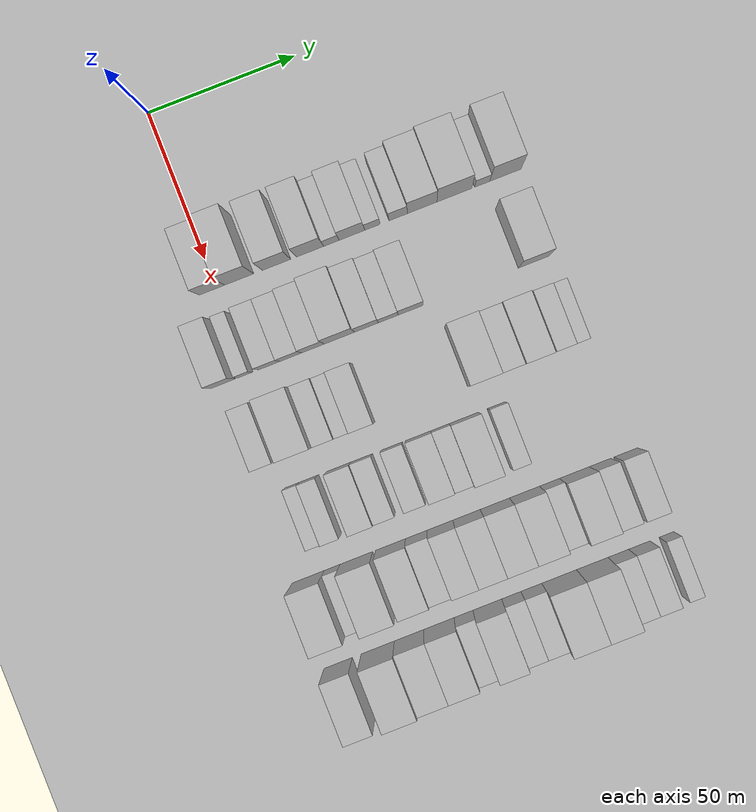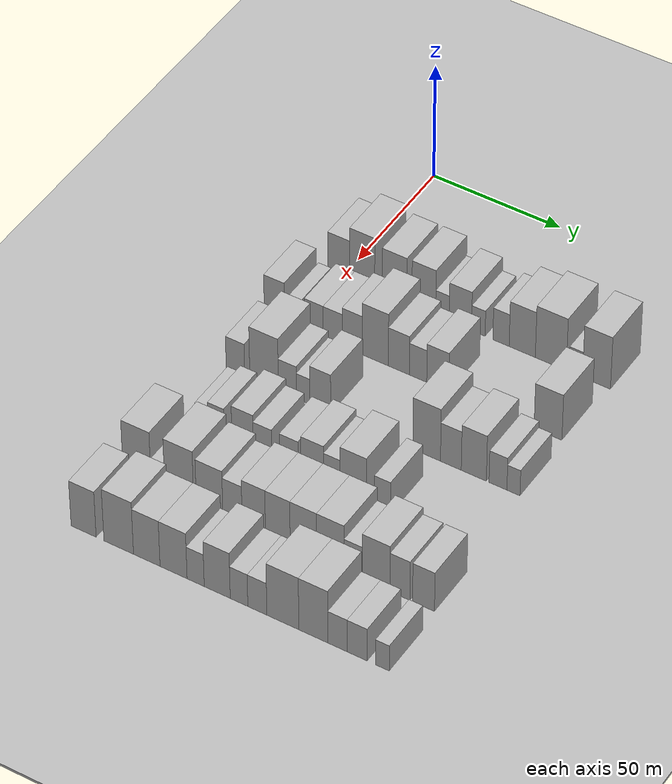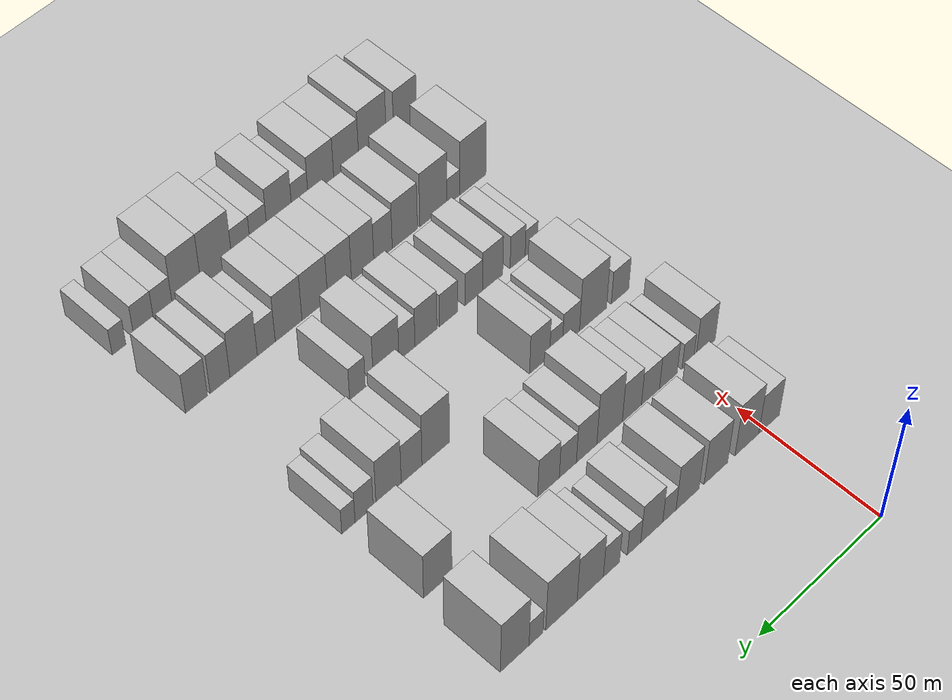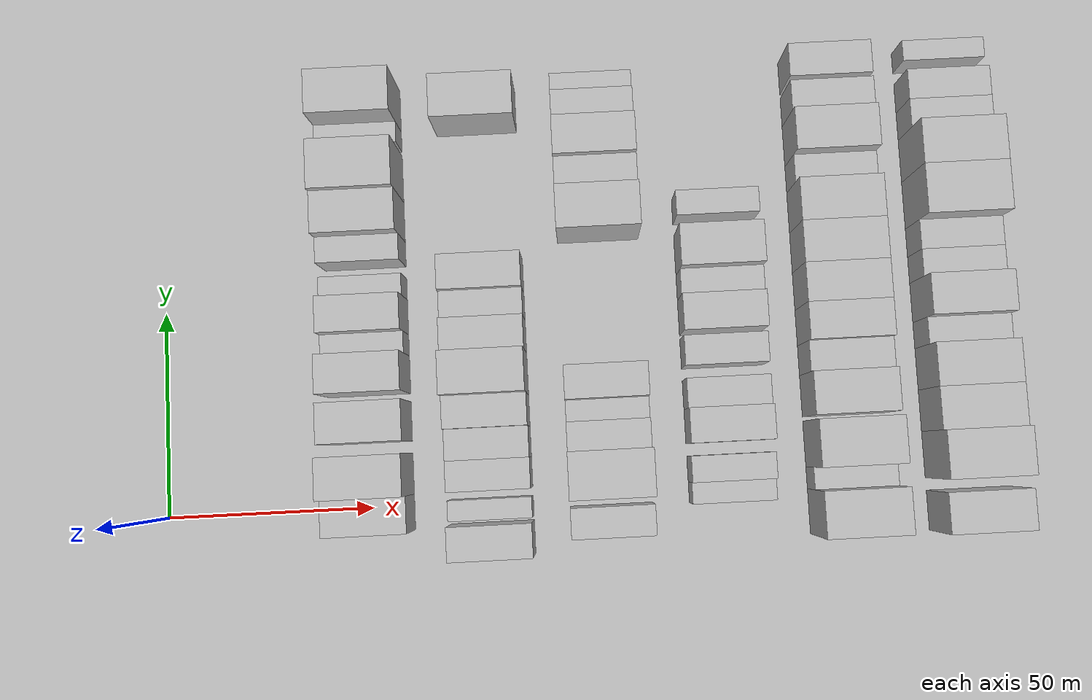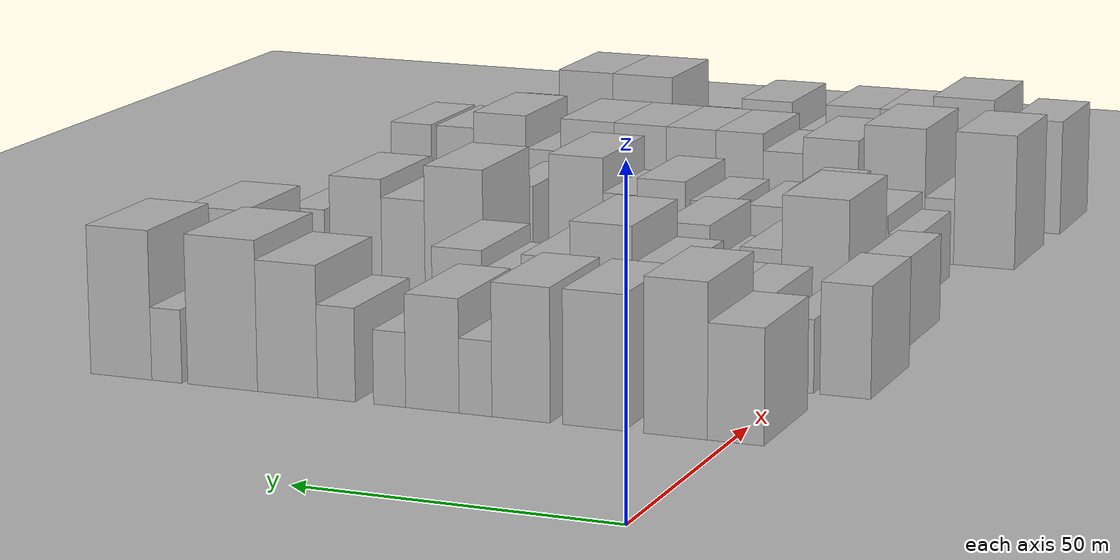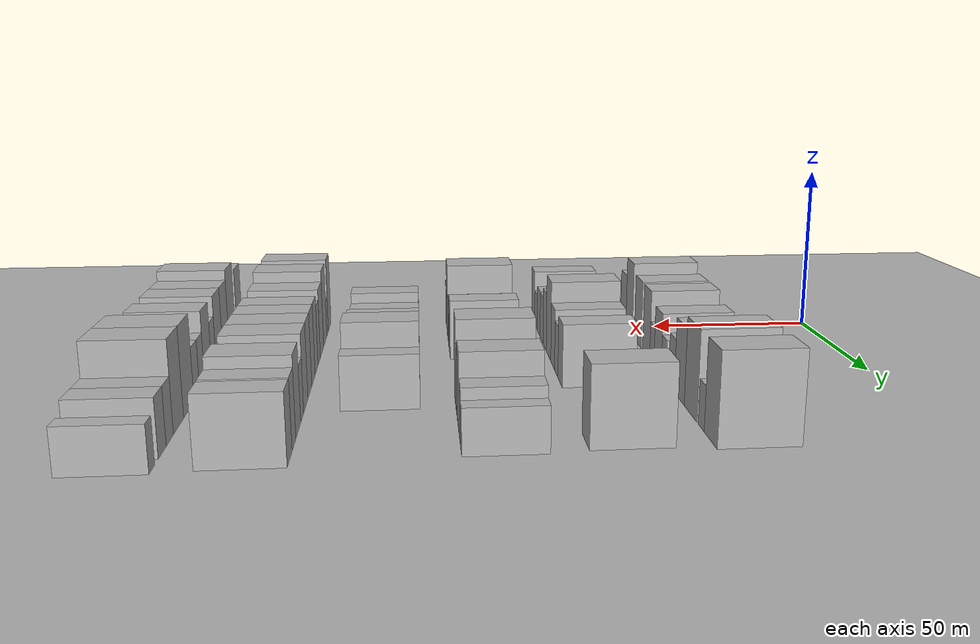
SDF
<sdf version="1.6">
 <world name="default">
  <include><name>ground_plane_1</name><uri>model://HANNAS_ground_plane</uri></include>
  <include>
   <name>ground_plane_2</name>
   <uri>model://HANNAS_ground_plane</uri>
   <pose>100 0 0  0 0 0</pose>
  </include>
  <model name="building_58">
   <static>1</static>
   <pose>50.0000 -1.4658 0 0.000000 0.000000 0.000000</pose>
   <link name="link">
    <pose>0 0 9.00 0 0 0</pose>
    <collision name="collision"><geometry><box><size>20.0000 8.6507 18.0000</size></box></geometry></collision>
    <visual name="visual">
     <cast_shadows>0</cast_shadows>
     <geometry><box><size>20.0000 8.6507 18.0000</size></box></geometry>
     <material>
      <script>
       <uri>model://HANNAS_wall/materials/scripts</uri>
       <uri>model://HANNAS_wall/materials/textures</uri>
       <name>vrc/HANNAS_wall</name>
      </script>
     </material>
    </visual>
   </link>
  </model>
  <model name="building_59">
   <static>1</static>
   <pose>50.0000 7.7913 0 0.000000 0.000000 0.000000</pose>
   <link name="link">
    <pose>0 0 12.00 0 0 0</pose>
    <collision name="collision"><geometry><box><size>20.0000 9.8635 24.0000</size></box></geometry></collision>
    <visual name="visual">
     <cast_shadows>0</cast_shadows>
     <geometry><box><size>20.0000 9.8635 24.0000</size></box></geometry>
     <material>
      <script>
       <uri>model://HANNAS_wall/materials/scripts</uri>
       <uri>model://HANNAS_wall/materials/textures</uri>
       <name>vrc/HANNAS_wall</name>
      </script>
     </material>
    </visual>
   </link>
  </model>
  <model name="building_60">
   <static>1</static>
   <pose>50.0000 20.5481 0 0.000000 0.000000 0.000000</pose>
   <link name="link">
    <pose>0 0 10.50 0 0 0</pose>
    <collision name="collision"><geometry><box><size>20.0000 9.6502 21.0000</size></box></geometry></collision>
    <visual name="visual">
     <cast_shadows>0</cast_shadows>
     <geometry><box><size>20.0000 9.6502 21.0000</size></box></geometry>
     <material>
      <script>
       <uri>model://HANNAS_wall/materials/scripts</uri>
       <uri>model://HANNAS_wall/materials/textures</uri>
       <name>vrc/HANNAS_wall</name>
      </script>
     </material>
    </visual>
   </link>
  </model>
  <model name="building_61">
   <static>1</static>
   <pose>50.0000 32.0184 0 0.000000 0.000000 0.000000</pose>
   <link name="link">
    <pose>0 0 10.50 0 0 0</pose>
    <collision name="collision"><geometry><box><size>20.0000 9.2904 21.0000</size></box></geometry></collision>
    <visual name="visual">
     <cast_shadows>0</cast_shadows>
     <geometry><box><size>20.0000 9.2904 21.0000</size></box></geometry>
     <material>
      <script>
       <uri>model://HANNAS_wall/materials/scripts</uri>
       <uri>model://HANNAS_wall/materials/textures</uri>
       <name>vrc/HANNAS_wall</name>
      </script>
     </material>
    </visual>
   </link>
  </model>
  <model name="building_62">
   <static>1</static>
   <pose>50.0000 39.3033 0 0.000000 0.000000 0.000000</pose>
   <link name="link">
    <pose>0 0 6.00 0 0 0</pose>
    <collision name="collision"><geometry><box><size>20.0000 5.2794 12.0000</size></box></geometry></collision>
    <visual name="visual">
     <cast_shadows>0</cast_shadows>
     <geometry><box><size>20.0000 5.2794 12.0000</size></box></geometry>
     <material>
      <script>
       <uri>model://HANNAS_wall/materials/scripts</uri>
       <uri>model://HANNAS_wall/materials/textures</uri>
       <name>vrc/HANNAS_wall</name>
      </script>
     </material>
    </visual>
   </link>
  </model>
  <model name="building_63">
   <static>1</static>
   <pose>50.0000 46.2925 0 0.000000 0.000000 0.000000</pose>
   <link name="link">
    <pose>0 0 9.00 0 0 0</pose>
    <collision name="collision"><geometry><box><size>20.0000 8.6988 18.0000</size></box></geometry></collision>
    <visual name="visual">
     <cast_shadows>0</cast_shadows>
     <geometry><box><size>20.0000 8.6988 18.0000</size></box></geometry>
     <material>
      <script>
       <uri>model://HANNAS_wall/materials/scripts</uri>
       <uri>model://HANNAS_wall/materials/textures</uri>
       <name>vrc/HANNAS_wall</name>
      </script>
     </material>
    </visual>
   </link>
  </model>
  <model name="building_64">
   <static>1</static>
   <pose>50.0000 53.2719 0 0.000000 0.000000 0.000000</pose>
   <link name="link">
    <pose>0 0 6.00 0 0 0</pose>
    <collision name="collision"><geometry><box><size>20.0000 5.2601 12.0000</size></box></geometry></collision>
    <visual name="visual">
     <cast_shadows>0</cast_shadows>
     <geometry><box><size>20.0000 5.2601 12.0000</size></box></geometry>
     <material>
      <script>
       <uri>model://HANNAS_wall/materials/scripts</uri>
       <uri>model://HANNAS_wall/materials/textures</uri>
       <name>vrc/HANNAS_wall</name>
      </script>
     </material>
    </visual>
   </link>
  </model>
  <model name="building_65">
   <static>1</static>
   <pose>50.0000 62.0381 0 0.000000 0.000000 0.000000</pose>
   <link name="link">
    <pose>0 0 7.50 0 0 0</pose>
    <collision name="collision"><geometry><box><size>20.0000 6.2723 15.0000</size></box></geometry></collision>
    <visual name="visual">
     <cast_shadows>0</cast_shadows>
     <geometry><box><size>20.0000 6.2723 15.0000</size></box></geometry>
     <material>
      <script>
       <uri>model://HANNAS_wall/materials/scripts</uri>
       <uri>model://HANNAS_wall/materials/textures</uri>
       <name>vrc/HANNAS_wall</name>
      </script>
     </material>
    </visual>
   </link>
  </model>
  <model name="building_66">
   <static>1</static>
   <pose>50.0000 70.2058 0 0.000000 0.000000 0.000000</pose>
   <link name="link">
    <pose>0 0 10.50 0 0 0</pose>
    <collision name="collision"><geometry><box><size>20.0000 10.0632 21.0000</size></box></geometry></collision>
    <visual name="visual">
     <cast_shadows>0</cast_shadows>
     <geometry><box><size>20.0000 10.0632 21.0000</size></box></geometry>
     <material>
      <script>
       <uri>model://HANNAS_wall/materials/scripts</uri>
       <uri>model://HANNAS_wall/materials/textures</uri>
       <name>vrc/HANNAS_wall</name>
      </script>
     </material>
    </visual>
   </link>
  </model>
  <model name="building_67">
   <static>1</static>
   <pose>50.0000 81.1623 0 0.000000 0.000000 0.000000</pose>
   <link name="link">
    <pose>0 0 12.00 0 0 0</pose>
    <collision name="collision"><geometry><box><size>20.0000 11.8498 24.0000</size></box></geometry></collision>
    <visual name="visual">
     <cast_shadows>0</cast_shadows>
     <geometry><box><size>20.0000 11.8498 24.0000</size></box></geometry>
     <material>
      <script>
       <uri>model://HANNAS_wall/materials/scripts</uri>
       <uri>model://HANNAS_wall/materials/textures</uri>
       <name>vrc/HANNAS_wall</name>
      </script>
     </material>
    </visual>
   </link>
  </model>
  <model name="building_68">
   <static>1</static>
   <pose>50.0000 90.6826 0 0.000000 0.000000 0.000000</pose>
   <link name="link">
    <pose>0 0 6.00 0 0 0</pose>
    <collision name="collision"><geometry><box><size>20.0000 5.1908 12.0000</size></box></geometry></collision>
    <visual name="visual">
     <cast_shadows>0</cast_shadows>
     <geometry><box><size>20.0000 5.1908 12.0000</size></box></geometry>
     <material>
      <script>
       <uri>model://HANNAS_wall/materials/scripts</uri>
       <uri>model://HANNAS_wall/materials/textures</uri>
       <name>vrc/HANNAS_wall</name>
      </script>
     </material>
    </visual>
   </link>
  </model>
  <model name="building_69">
   <static>1</static>
   <pose>50.0000 98.5675 0 0.000000 0.000000 0.000000</pose>
   <link name="link">
    <pose>0 0 12.00 0 0 0</pose>
    <collision name="collision"><geometry><box><size>20.0000 10.5790 24.0000</size></box></geometry></collision>
    <visual name="visual">
     <cast_shadows>0</cast_shadows>
     <geometry><box><size>20.0000 10.5790 24.0000</size></box></geometry>
     <material>
      <script>
       <uri>model://HANNAS_wall/materials/scripts</uri>
       <uri>model://HANNAS_wall/materials/textures</uri>
       <name>vrc/HANNAS_wall</name>
      </script>
     </material>
    </visual>
   </link>
  </model>
  <model name="building_173">
   <static>1</static>
   <pose>79.0000 -8.8095 0 0.000000 0.000000 0.000000</pose>
   <link name="link">
    <pose>0 0 9.00 0 0 0</pose>
    <collision name="collision"><geometry><box><size>20.0000 8.0505 18.0000</size></box></geometry></collision>
    <visual name="visual">
     <cast_shadows>0</cast_shadows>
     <geometry><box><size>20.0000 8.0505 18.0000</size></box></geometry>
     <material>
      <script>
       <uri>model://HANNAS_wall/materials/scripts</uri>
       <uri>model://HANNAS_wall/materials/textures</uri>
       <name>vrc/HANNAS_wall</name>
      </script>
     </material>
    </visual>
   </link>
  </model>
  <model name="building_174">
   <static>1</static>
   <pose>79.0000 -1.3355 0 0.000000 0.000000 0.000000</pose>
   <link name="link">
    <pose>0 0 6.00 0 0 0</pose>
    <collision name="collision"><geometry><box><size>20.0000 4.8977 12.0000</size></box></geometry></collision>
    <visual name="visual">
     <cast_shadows>0</cast_shadows>
     <geometry><box><size>20.0000 4.8977 12.0000</size></box></geometry>
     <material>
      <script>
       <uri>model://HANNAS_wall/materials/scripts</uri>
       <uri>model://HANNAS_wall/materials/textures</uri>
       <name>vrc/HANNAS_wall</name>
      </script>
     </material>
    </visual>
   </link>
  </model>
  <model name="building_175">
   <static>1</static>
   <pose>79.0000 6.7716 0 0.000000 0.000000 0.000000</pose>
   <link name="link">
    <pose>0 0 7.50 0 0 0</pose>
    <collision name="collision"><geometry><box><size>20.0000 7.3166 15.0000</size></box></geometry></collision>
    <visual name="visual">
     <cast_shadows>0</cast_shadows>
     <geometry><box><size>20.0000 7.3166 15.0000</size></box></geometry>
     <material>
      <script>
       <uri>model://HANNAS_wall/materials/scripts</uri>
       <uri>model://HANNAS_wall/materials/textures</uri>
       <name>vrc/HANNAS_wall</name>
      </script>
     </material>
    </visual>
   </link>
  </model>
  <model name="building_176">
   <static>1</static>
   <pose>79.0000 14.1439 0 0.000000 0.000000 0.000000</pose>
   <link name="link">
    <pose>0 0 7.50 0 0 0</pose>
    <collision name="collision"><geometry><box><size>20.0000 7.4280 15.0000</size></box></geometry></collision>
    <visual name="visual">
     <cast_shadows>0</cast_shadows>
     <geometry><box><size>20.0000 7.4280 15.0000</size></box></geometry>
     <material>
      <script>
       <uri>model://HANNAS_wall/materials/scripts</uri>
       <uri>model://HANNAS_wall/materials/textures</uri>
       <name>vrc/HANNAS_wall</name>
      </script>
     </material>
    </visual>
   </link>
  </model>
  <model name="building_177">
   <static>1</static>
   <pose>79.0000 21.7420 0 0.000000 0.000000 0.000000</pose>
   <link name="link">
    <pose>0 0 9.00 0 0 0</pose>
    <collision name="collision"><geometry><box><size>20.0000 7.7682 18.0000</size></box></geometry></collision>
    <visual name="visual">
     <cast_shadows>0</cast_shadows>
     <geometry><box><size>20.0000 7.7682 18.0000</size></box></geometry>
     <material>
      <script>
       <uri>model://HANNAS_wall/materials/scripts</uri>
       <uri>model://HANNAS_wall/materials/textures</uri>
       <name>vrc/HANNAS_wall</name>
      </script>
     </material>
    </visual>
   </link>
  </model>
  <model name="building_178">
   <static>1</static>
   <pose>79.0000 30.7493 0 0.000000 0.000000 0.000000</pose>
   <link name="link">
    <pose>0 0 12.00 0 0 0</pose>
    <collision name="collision"><geometry><box><size>20.0000 10.2464 24.0000</size></box></geometry></collision>
    <visual name="visual">
     <cast_shadows>0</cast_shadows>
     <geometry><box><size>20.0000 10.2464 24.0000</size></box></geometry>
     <material>
      <script>
       <uri>model://HANNAS_wall/materials/scripts</uri>
       <uri>model://HANNAS_wall/materials/textures</uri>
       <name>vrc/HANNAS_wall</name>
      </script>
     </material>
    </visual>
   </link>
  </model>
  <model name="building_179">
   <static>1</static>
   <pose>79.0000 39.9305 0 0.000000 0.000000 0.000000</pose>
   <link name="link">
    <pose>0 0 9.00 0 0 0</pose>
    <collision name="collision"><geometry><box><size>20.0000 8.1161 18.0000</size></box></geometry></collision>
    <visual name="visual">
     <cast_shadows>0</cast_shadows>
     <geometry><box><size>20.0000 8.1161 18.0000</size></box></geometry>
     <material>
      <script>
       <uri>model://HANNAS_wall/materials/scripts</uri>
       <uri>model://HANNAS_wall/materials/textures</uri>
       <name>vrc/HANNAS_wall</name>
      </script>
     </material>
    </visual>
   </link>
  </model>
  <model name="building_180">
   <static>1</static>
   <pose>79.0000 47.3408 0 0.000000 0.000000 0.000000</pose>
   <link name="link">
    <pose>0 0 7.50 0 0 0</pose>
    <collision name="collision"><geometry><box><size>20.0000 6.7044 15.0000</size></box></geometry></collision>
    <visual name="visual">
     <cast_shadows>0</cast_shadows>
     <geometry><box><size>20.0000 6.7044 15.0000</size></box></geometry>
     <material>
      <script>
       <uri>model://HANNAS_wall/materials/scripts</uri>
       <uri>model://HANNAS_wall/materials/textures</uri>
       <name>vrc/HANNAS_wall</name>
      </script>
     </material>
    </visual>
   </link>
  </model>
  <model name="building_181">
   <static>1</static>
   <pose>79.0000 54.9197 0 0.000000 0.000000 0.000000</pose>
   <link name="link">
    <pose>0 0 9.00 0 0 0</pose>
    <collision name="collision"><geometry><box><size>20.0000 8.4533 18.0000</size></box></geometry></collision>
    <visual name="visual">
     <cast_shadows>0</cast_shadows>
     <geometry><box><size>20.0000 8.4533 18.0000</size></box></geometry>
     <material>
      <script>
       <uri>model://HANNAS_wall/materials/scripts</uri>
       <uri>model://HANNAS_wall/materials/textures</uri>
       <name>vrc/HANNAS_wall</name>
      </script>
     </material>
    </visual>
   </link>
  </model>
  <model name="building_182">
   <static>1</static>
   <pose>79.0000 96.8794 0 0.000000 0.000000 0.000000</pose>
   <link name="link">
    <pose>0 0 10.50 0 0 0</pose>
    <collision name="collision"><geometry><box><size>20.0000 10.4888 21.0000</size></box></geometry></collision>
    <visual name="visual">
     <cast_shadows>0</cast_shadows>
     <geometry><box><size>20.0000 10.4888 21.0000</size></box></geometry>
     <material>
      <script>
       <uri>model://HANNAS_wall/materials/scripts</uri>
       <uri>model://HANNAS_wall/materials/textures</uri>
       <name>vrc/HANNAS_wall</name>
      </script>
     </material>
    </visual>
   </link>
  </model>
  <model name="building_288">
   <static>1</static>
   <pose>108.0000 -5.6648 0 0.000000 0.000000 0.000000</pose>
   <link name="link">
    <pose>0 0 7.50 0 0 0</pose>
    <collision name="collision"><geometry><box><size>20.0000 7.2884 15.0000</size></box></geometry></collision>
    <visual name="visual">
     <cast_shadows>0</cast_shadows>
     <geometry><box><size>20.0000 7.2884 15.0000</size></box></geometry>
     <material>
      <script>
       <uri>model://HANNAS_wall/materials/scripts</uri>
       <uri>model://HANNAS_wall/materials/textures</uri>
       <name>vrc/HANNAS_wall</name>
      </script>
     </material>
    </visual>
   </link>
  </model>
  <model name="building_289">
   <static>1</static>
   <pose>108.0000 5.5718 0 0.000000 0.000000 0.000000</pose>
   <link name="link">
    <pose>0 0 12.00 0 0 0</pose>
    <collision name="collision"><geometry><box><size>20.0000 11.1848 24.0000</size></box></geometry></collision>
    <visual name="visual">
     <cast_shadows>0</cast_shadows>
     <geometry><box><size>20.0000 11.1848 24.0000</size></box></geometry>
     <material>
      <script>
       <uri>model://HANNAS_wall/materials/scripts</uri>
       <uri>model://HANNAS_wall/materials/textures</uri>
       <name>vrc/HANNAS_wall</name>
      </script>
     </material>
    </visual>
   </link>
  </model>
  <model name="building_290">
   <static>1</static>
   <pose>108.0000 14.6629 0 0.000000 0.000000 0.000000</pose>
   <link name="link">
    <pose>0 0 7.50 0 0 0</pose>
    <collision name="collision"><geometry><box><size>20.0000 6.9974 15.0000</size></box></geometry></collision>
    <visual name="visual">
     <cast_shadows>0</cast_shadows>
     <geometry><box><size>20.0000 6.9974 15.0000</size></box></geometry>
     <material>
      <script>
       <uri>model://HANNAS_wall/materials/scripts</uri>
       <uri>model://HANNAS_wall/materials/textures</uri>
       <name>vrc/HANNAS_wall</name>
      </script>
     </material>
    </visual>
   </link>
  </model>
  <model name="building_291">
   <static>1</static>
   <pose>108.0000 20.7461 0 0.000000 0.000000 0.000000</pose>
   <link name="link">
    <pose>0 0 6.00 0 0 0</pose>
    <collision name="collision"><geometry><box><size>20.0000 5.1690 12.0000</size></box></geometry></collision>
    <visual name="visual">
     <cast_shadows>0</cast_shadows>
     <geometry><box><size>20.0000 5.1690 12.0000</size></box></geometry>
     <material>
      <script>
       <uri>model://HANNAS_wall/materials/scripts</uri>
       <uri>model://HANNAS_wall/materials/textures</uri>
       <name>vrc/HANNAS_wall</name>
      </script>
     </material>
    </visual>
   </link>
  </model>
  <model name="building_292">
   <static>1</static>
   <pose>108.0000 27.3857 0 0.000000 0.000000 0.000000</pose>
   <link name="link">
    <pose>0 0 9.00 0 0 0</pose>
    <collision name="collision"><geometry><box><size>20.0000 8.1102 18.0000</size></box></geometry></collision>
    <visual name="visual">
     <cast_shadows>0</cast_shadows>
     <geometry><box><size>20.0000 8.1102 18.0000</size></box></geometry>
     <material>
      <script>
       <uri>model://HANNAS_wall/materials/scripts</uri>
       <uri>model://HANNAS_wall/materials/textures</uri>
       <name>vrc/HANNAS_wall</name>
      </script>
     </material>
    </visual>
   </link>
  </model>
  <model name="building_293">
   <static>1</static>
   <pose>108.0000 68.1563 0 0.000000 0.000000 0.000000</pose>
   <link name="link">
    <pose>0 0 12.00 0 0 0</pose>
    <collision name="collision"><geometry><box><size>20.0000 10.4770 24.0000</size></box></geometry></collision>
    <visual name="visual">
     <cast_shadows>0</cast_shadows>
     <geometry><box><size>20.0000 10.4770 24.0000</size></box></geometry>
     <material>
      <script>
       <uri>model://HANNAS_wall/materials/scripts</uri>
       <uri>model://HANNAS_wall/materials/textures</uri>
       <name>vrc/HANNAS_wall</name>
      </script>
     </material>
    </visual>
   </link>
  </model>
  <model name="building_294">
   <static>1</static>
   <pose>108.0000 77.3162 0 0.000000 0.000000 0.000000</pose>
   <link name="link">
    <pose>0 0 9.00 0 0 0</pose>
    <collision name="collision"><geometry><box><size>20.0000 7.8428 18.0000</size></box></geometry></collision>
    <visual name="visual">
     <cast_shadows>0</cast_shadows>
     <geometry><box><size>20.0000 7.8428 18.0000</size></box></geometry>
     <material>
      <script>
       <uri>model://HANNAS_wall/materials/scripts</uri>
       <uri>model://HANNAS_wall/materials/textures</uri>
       <name>vrc/HANNAS_wall</name>
      </script>
     </material>
    </visual>
   </link>
  </model>
  <model name="building_295">
   <static>1</static>
   <pose>108.0000 85.9609 0 0.000000 0.000000 0.000000</pose>
   <link name="link">
    <pose>0 0 10.50 0 0 0</pose>
    <collision name="collision"><geometry><box><size>20.0000 9.4466 21.0000</size></box></geometry></collision>
    <visual name="visual">
     <cast_shadows>0</cast_shadows>
     <geometry><box><size>20.0000 9.4466 21.0000</size></box></geometry>
     <material>
      <script>
       <uri>model://HANNAS_wall/materials/scripts</uri>
       <uri>model://HANNAS_wall/materials/textures</uri>
       <name>vrc/HANNAS_wall</name>
      </script>
     </material>
    </visual>
   </link>
  </model>
  <model name="building_296">
   <static>1</static>
   <pose>108.0000 95.0334 0 0.000000 0.000000 0.000000</pose>
   <link name="link">
    <pose>0 0 7.50 0 0 0</pose>
    <collision name="collision"><geometry><box><size>20.0000 6.6984 15.0000</size></box></geometry></collision>
    <visual name="visual">
     <cast_shadows>0</cast_shadows>
     <geometry><box><size>20.0000 6.6984 15.0000</size></box></geometry>
     <material>
      <script>
       <uri>model://HANNAS_wall/materials/scripts</uri>
       <uri>model://HANNAS_wall/materials/textures</uri>
       <name>vrc/HANNAS_wall</name>
      </script>
     </material>
    </visual>
   </link>
  </model>
  <model name="building_297">
   <static>1</static>
   <pose>108.0000 100.8277 0 0.000000 0.000000 0.000000</pose>
   <link name="link">
    <pose>0 0 6.00 0 0 0</pose>
    <collision name="collision"><geometry><box><size>20.0000 4.8903 12.0000</size></box></geometry></collision>
    <visual name="visual">
     <cast_shadows>0</cast_shadows>
     <geometry><box><size>20.0000 4.8903 12.0000</size></box></geometry>
     <material>
      <script>
       <uri>model://HANNAS_wall/materials/scripts</uri>
       <uri>model://HANNAS_wall/materials/textures</uri>
       <name>vrc/HANNAS_wall</name>
      </script>
     </material>
    </visual>
   </link>
  </model>
  <model name="building_396">
   <static>1</static>
   <pose>137.0000 -0.0983 0 0.000000 0.000000 0.000000</pose>
   <link name="link">
    <pose>0 0 6.00 0 0 0</pose>
    <collision name="collision"><geometry><box><size>20.0000 5.0868 12.0000</size></box></geometry></collision>
    <visual name="visual">
     <cast_shadows>0</cast_shadows>
     <geometry><box><size>20.0000 5.0868 12.0000</size></box></geometry>
     <material>
      <script>
       <uri>model://HANNAS_wall/materials/scripts</uri>
       <uri>model://HANNAS_wall/materials/textures</uri>
       <name>vrc/HANNAS_wall</name>
      </script>
     </material>
    </visual>
   </link>
  </model>
  <model name="building_397">
   <static>1</static>
   <pose>137.0000 5.5508 0 0.000000 0.000000 0.000000</pose>
   <link name="link">
    <pose>0 0 7.50 0 0 0</pose>
    <collision name="collision"><geometry><box><size>20.0000 6.2115 15.0000</size></box></geometry></collision>
    <visual name="visual">
     <cast_shadows>0</cast_shadows>
     <geometry><box><size>20.0000 6.2115 15.0000</size></box></geometry>
     <material>
      <script>
       <uri>model://HANNAS_wall/materials/scripts</uri>
       <uri>model://HANNAS_wall/materials/textures</uri>
       <name>vrc/HANNAS_wall</name>
      </script>
     </material>
    </visual>
   </link>
  </model>
  <model name="building_398">
   <static>1</static>
   <pose>137.0000 15.7841 0 0.000000 0.000000 0.000000</pose>
   <link name="link">
    <pose>0 0 9.00 0 0 0</pose>
    <collision name="collision"><geometry><box><size>20.0000 8.2549 18.0000</size></box></geometry></collision>
    <visual name="visual">
     <cast_shadows>0</cast_shadows>
     <geometry><box><size>20.0000 8.2549 18.0000</size></box></geometry>
     <material>
      <script>
       <uri>model://HANNAS_wall/materials/scripts</uri>
       <uri>model://HANNAS_wall/materials/textures</uri>
       <name>vrc/HANNAS_wall</name>
      </script>
     </material>
    </visual>
   </link>
  </model>
  <model name="building_399">
   <static>1</static>
   <pose>137.0000 23.4554 0 0.000000 0.000000 0.000000</pose>
   <link name="link">
    <pose>0 0 7.50 0 0 0</pose>
    <collision name="collision"><geometry><box><size>20.0000 7.0878 15.0000</size></box></geometry></collision>
    <visual name="visual">
     <cast_shadows>0</cast_shadows>
     <geometry><box><size>20.0000 7.0878 15.0000</size></box></geometry>
     <material>
      <script>
       <uri>model://HANNAS_wall/materials/scripts</uri>
       <uri>model://HANNAS_wall/materials/textures</uri>
       <name>vrc/HANNAS_wall</name>
      </script>
     </material>
    </visual>
   </link>
  </model>
  <model name="building_400">
   <static>1</static>
   <pose>137.0000 33.5954 0 0.000000 0.000000 0.000000</pose>
   <link name="link">
    <pose>0 0 7.50 0 0 0</pose>
    <collision name="collision"><geometry><box><size>20.0000 7.1922 15.0000</size></box></geometry></collision>
    <visual name="visual">
     <cast_shadows>0</cast_shadows>
     <geometry><box><size>20.0000 7.1922 15.0000</size></box></geometry>
     <material>
      <script>
       <uri>model://HANNAS_wall/materials/scripts</uri>
       <uri>model://HANNAS_wall/materials/textures</uri>
       <name>vrc/HANNAS_wall</name>
      </script>
     </material>
    </visual>
   </link>
  </model>
  <model name="building_401">
   <static>1</static>
   <pose>137.0000 42.5350 0 0.000000 0.000000 0.000000</pose>
   <link name="link">
    <pose>0 0 9.00 0 0 0</pose>
    <collision name="collision"><geometry><box><size>20.0000 8.6869 18.0000</size></box></geometry></collision>
    <visual name="visual">
     <cast_shadows>0</cast_shadows>
     <geometry><box><size>20.0000 8.6869 18.0000</size></box></geometry>
     <material>
      <script>
       <uri>model://HANNAS_wall/materials/scripts</uri>
       <uri>model://HANNAS_wall/materials/textures</uri>
       <name>vrc/HANNAS_wall</name>
      </script>
     </material>
    </visual>
   </link>
  </model>
  <model name="building_402">
   <static>1</static>
   <pose>137.0000 49.9952 0 0.000000 0.000000 0.000000</pose>
   <link name="link">
    <pose>0 0 7.50 0 0 0</pose>
    <collision name="collision"><geometry><box><size>20.0000 6.2336 15.0000</size></box></geometry></collision>
    <visual name="visual">
     <cast_shadows>0</cast_shadows>
     <geometry><box><size>20.0000 6.2336 15.0000</size></box></geometry>
     <material>
      <script>
       <uri>model://HANNAS_wall/materials/scripts</uri>
       <uri>model://HANNAS_wall/materials/textures</uri>
       <name>vrc/HANNAS_wall</name>
      </script>
     </material>
    </visual>
   </link>
  </model>
  <model name="building_403">
   <static>1</static>
   <pose>137.0000 58.0871 0 0.000000 0.000000 0.000000</pose>
   <link name="link">
    <pose>0 0 10.50 0 0 0</pose>
    <collision name="collision"><geometry><box><size>20.0000 9.9502 21.0000</size></box></geometry></collision>
    <visual name="visual">
     <cast_shadows>0</cast_shadows>
     <geometry><box><size>20.0000 9.9502 21.0000</size></box></geometry>
     <material>
      <script>
       <uri>model://HANNAS_wall/materials/scripts</uri>
       <uri>model://HANNAS_wall/materials/textures</uri>
       <name>vrc/HANNAS_wall</name>
      </script>
     </material>
    </visual>
   </link>
  </model>
  <model name="building_404">
   <static>1</static>
   <pose>137.0000 69.0842 0 0.000000 0.000000 0.000000</pose>
   <link name="link">
    <pose>0 0 7.50 0 0 0</pose>
    <collision name="collision"><geometry><box><size>20.0000 6.0440 15.0000</size></box></geometry></collision>
    <visual name="visual">
     <cast_shadows>0</cast_shadows>
     <geometry><box><size>20.0000 6.0440 15.0000</size></box></geometry>
     <material>
      <script>
       <uri>model://HANNAS_wall/materials/scripts</uri>
       <uri>model://HANNAS_wall/materials/textures</uri>
       <name>vrc/HANNAS_wall</name>
      </script>
     </material>
    </visual>
   </link>
  </model>
  <model name="building_506">
   <static>1</static>
   <pose>166.0000 -6.1907 0 0.000000 0.000000 0.000000</pose>
   <link name="link">
    <pose>0 0 12.00 0 0 0</pose>
    <collision name="collision"><geometry><box><size>20.0000 10.8594 24.0000</size></box></geometry></collision>
    <visual name="visual">
     <cast_shadows>0</cast_shadows>
     <geometry><box><size>20.0000 10.8594 24.0000</size></box></geometry>
     <material>
      <script>
       <uri>model://HANNAS_wall/materials/scripts</uri>
       <uri>model://HANNAS_wall/materials/textures</uri>
       <name>vrc/HANNAS_wall</name>
      </script>
     </material>
    </visual>
   </link>
  </model>
  <model name="building_507">
   <static>1</static>
   <pose>166.0000 1.9009 0 0.000000 0.000000 0.000000</pose>
   <link name="link">
    <pose>0 0 6.00 0 0 0</pose>
    <collision name="collision"><geometry><box><size>20.0000 5.3240 12.0000</size></box></geometry></collision>
    <visual name="visual">
     <cast_shadows>0</cast_shadows>
     <geometry><box><size>20.0000 5.3240 12.0000</size></box></geometry>
     <material>
      <script>
       <uri>model://HANNAS_wall/materials/scripts</uri>
       <uri>model://HANNAS_wall/materials/textures</uri>
       <name>vrc/HANNAS_wall</name>
      </script>
     </material>
    </visual>
   </link>
  </model>
  <model name="building_508">
   <static>1</static>
   <pose>166.0000 10.1318 0 0.000000 0.000000 0.000000</pose>
   <link name="link">
    <pose>0 0 12.00 0 0 0</pose>
    <collision name="collision"><geometry><box><size>20.0000 11.1378 24.0000</size></box></geometry></collision>
    <visual name="visual">
     <cast_shadows>0</cast_shadows>
     <geometry><box><size>20.0000 11.1378 24.0000</size></box></geometry>
     <material>
      <script>
       <uri>model://HANNAS_wall/materials/scripts</uri>
       <uri>model://HANNAS_wall/materials/textures</uri>
       <name>vrc/HANNAS_wall</name>
      </script>
     </material>
    </visual>
   </link>
  </model>
  <model name="building_509">
   <static>1</static>
   <pose>166.0000 21.7806 0 0.000000 0.000000 0.000000</pose>
   <link name="link">
    <pose>0 0 10.50 0 0 0</pose>
    <collision name="collision"><geometry><box><size>20.0000 10.1598 21.0000</size></box></geometry></collision>
    <visual name="visual">
     <cast_shadows>0</cast_shadows>
     <geometry><box><size>20.0000 10.1598 21.0000</size></box></geometry>
     <material>
      <script>
       <uri>model://HANNAS_wall/materials/scripts</uri>
       <uri>model://HANNAS_wall/materials/textures</uri>
       <name>vrc/HANNAS_wall</name>
      </script>
     </material>
    </visual>
   </link>
  </model>
  <model name="building_510">
   <static>1</static>
   <pose>166.0000 30.5357 0 0.000000 0.000000 0.000000</pose>
   <link name="link">
    <pose>0 0 9.00 0 0 0</pose>
    <collision name="collision"><geometry><box><size>20.0000 7.3504 18.0000</size></box></geometry></collision>
    <visual name="visual">
     <cast_shadows>0</cast_shadows>
     <geometry><box><size>20.0000 7.3504 18.0000</size></box></geometry>
     <material>
      <script>
       <uri>model://HANNAS_wall/materials/scripts</uri>
       <uri>model://HANNAS_wall/materials/textures</uri>
       <name>vrc/HANNAS_wall</name>
      </script>
     </material>
    </visual>
   </link>
  </model>
  <model name="building_511">
   <static>1</static>
   <pose>166.0000 38.6359 0 0.000000 0.000000 0.000000</pose>
   <link name="link">
    <pose>0 0 10.50 0 0 0</pose>
    <collision name="collision"><geometry><box><size>20.0000 8.8500 21.0000</size></box></geometry></collision>
    <visual name="visual">
     <cast_shadows>0</cast_shadows>
     <geometry><box><size>20.0000 8.8500 21.0000</size></box></geometry>
     <material>
      <script>
       <uri>model://HANNAS_wall/materials/scripts</uri>
       <uri>model://HANNAS_wall/materials/textures</uri>
       <name>vrc/HANNAS_wall</name>
      </script>
     </material>
    </visual>
   </link>
  </model>
  <model name="building_512">
   <static>1</static>
   <pose>166.0000 47.7215 0 0.000000 0.000000 0.000000</pose>
   <link name="link">
    <pose>0 0 10.50 0 0 0</pose>
    <collision name="collision"><geometry><box><size>20.0000 9.3214 21.0000</size></box></geometry></collision>
    <visual name="visual">
     <cast_shadows>0</cast_shadows>
     <geometry><box><size>20.0000 9.3214 21.0000</size></box></geometry>
     <material>
      <script>
       <uri>model://HANNAS_wall/materials/scripts</uri>
       <uri>model://HANNAS_wall/materials/textures</uri>
       <name>vrc/HANNAS_wall</name>
      </script>
     </material>
    </visual>
   </link>
  </model>
  <model name="building_513">
   <static>1</static>
   <pose>166.0000 57.3737 0 0.000000 0.000000 0.000000</pose>
   <link name="link">
    <pose>0 0 10.50 0 0 0</pose>
    <collision name="collision"><geometry><box><size>20.0000 9.9830 21.0000</size></box></geometry></collision>
    <visual name="visual">
     <cast_shadows>0</cast_shadows>
     <geometry><box><size>20.0000 9.9830 21.0000</size></box></geometry>
     <material>
      <script>
       <uri>model://HANNAS_wall/materials/scripts</uri>
       <uri>model://HANNAS_wall/materials/textures</uri>
       <name>vrc/HANNAS_wall</name>
      </script>
     </material>
    </visual>
   </link>
  </model>
  <model name="building_514">
   <static>1</static>
   <pose>166.0000 67.4883 0 0.000000 0.000000 0.000000</pose>
   <link name="link">
    <pose>0 0 10.50 0 0 0</pose>
    <collision name="collision"><geometry><box><size>20.0000 10.2461 21.0000</size></box></geometry></collision>
    <visual name="visual">
     <cast_shadows>0</cast_shadows>
     <geometry><box><size>20.0000 10.2461 21.0000</size></box></geometry>
     <material>
      <script>
       <uri>model://HANNAS_wall/materials/scripts</uri>
       <uri>model://HANNAS_wall/materials/textures</uri>
       <name>vrc/HANNAS_wall</name>
      </script>
     </material>
    </visual>
   </link>
  </model>
  <model name="building_515">
   <static>1</static>
   <pose>166.0000 75.9964 0 0.000000 0.000000 0.000000</pose>
   <link name="link">
    <pose>0 0 7.50 0 0 0</pose>
    <collision name="collision"><geometry><box><size>20.0000 6.7702 15.0000</size></box></geometry></collision>
    <visual name="visual">
     <cast_shadows>0</cast_shadows>
     <geometry><box><size>20.0000 6.7702 15.0000</size></box></geometry>
     <material>
      <script>
       <uri>model://HANNAS_wall/materials/scripts</uri>
       <uri>model://HANNAS_wall/materials/textures</uri>
       <name>vrc/HANNAS_wall</name>
      </script>
     </material>
    </visual>
   </link>
  </model>
  <model name="building_516">
   <static>1</static>
   <pose>166.0000 84.5080 0 0.000000 0.000000 0.000000</pose>
   <link name="link">
    <pose>0 0 10.50 0 0 0</pose>
    <collision name="collision"><geometry><box><size>20.0000 10.2530 21.0000</size></box></geometry></collision>
    <visual name="visual">
     <cast_shadows>0</cast_shadows>
     <geometry><box><size>20.0000 10.2530 21.0000</size></box></geometry>
     <material>
      <script>
       <uri>model://HANNAS_wall/materials/scripts</uri>
       <uri>model://HANNAS_wall/materials/textures</uri>
       <name>vrc/HANNAS_wall</name>
      </script>
     </material>
    </visual>
   </link>
  </model>
  <model name="building_517">
   <static>1</static>
   <pose>166.0000 93.3087 0 0.000000 0.000000 0.000000</pose>
   <link name="link">
    <pose>0 0 9.00 0 0 0</pose>
    <collision name="collision"><geometry><box><size>20.0000 7.3483 18.0000</size></box></geometry></collision>
    <visual name="visual">
     <cast_shadows>0</cast_shadows>
     <geometry><box><size>20.0000 7.3483 18.0000</size></box></geometry>
     <material>
      <script>
       <uri>model://HANNAS_wall/materials/scripts</uri>
       <uri>model://HANNAS_wall/materials/textures</uri>
       <name>vrc/HANNAS_wall</name>
      </script>
     </material>
    </visual>
   </link>
  </model>
  <model name="building_518">
   <static>1</static>
   <pose>166.0000 102.0078 0 0.000000 0.000000 0.000000</pose>
   <link name="link">
    <pose>0 0 9.00 0 0 0</pose>
    <collision name="collision"><geometry><box><size>20.0000 8.0500 18.0000</size></box></geometry></collision>
    <visual name="visual">
     <cast_shadows>0</cast_shadows>
     <geometry><box><size>20.0000 8.0500 18.0000</size></box></geometry>
     <material>
      <script>
       <uri>model://HANNAS_wall/materials/scripts</uri>
       <uri>model://HANNAS_wall/materials/textures</uri>
       <name>vrc/HANNAS_wall</name>
      </script>
     </material>
    </visual>
   </link>
  </model>
  <model name="building_623">
   <static>1</static>
   <pose>195.0000 -7.4212 0 0.000000 0.000000 0.000000</pose>
   <link name="link">
    <pose>0 0 10.50 0 0 0</pose>
    <collision name="collision"><geometry><box><size>20.0000 9.6240 21.0000</size></box></geometry></collision>
    <visual name="visual">
     <cast_shadows>0</cast_shadows>
     <geometry><box><size>20.0000 9.6240 21.0000</size></box></geometry>
     <material>
      <script>
       <uri>model://HANNAS_wall/materials/scripts</uri>
       <uri>model://HANNAS_wall/materials/textures</uri>
       <name>vrc/HANNAS_wall</name>
      </script>
     </material>
    </visual>
   </link>
  </model>
  <model name="building_624">
   <static>1</static>
   <pose>195.0000 6.0526 0 0.000000 0.000000 0.000000</pose>
   <link name="link">
    <pose>0 0 12.00 0 0 0</pose>
    <collision name="collision"><geometry><box><size>20.0000 11.3237 24.0000</size></box></geometry></collision>
    <visual name="visual">
     <cast_shadows>0</cast_shadows>
     <geometry><box><size>20.0000 11.3237 24.0000</size></box></geometry>
     <material>
      <script>
       <uri>model://HANNAS_wall/materials/scripts</uri>
       <uri>model://HANNAS_wall/materials/textures</uri>
       <name>vrc/HANNAS_wall</name>
      </script>
     </material>
    </visual>
   </link>
  </model>
  <model name="building_625">
   <static>1</static>
   <pose>195.0000 16.7684 0 0.000000 0.000000 0.000000</pose>
   <link name="link">
    <pose>0 0 10.50 0 0 0</pose>
    <collision name="collision"><geometry><box><size>20.0000 10.1077 21.0000</size></box></geometry></collision>
    <visual name="visual">
     <cast_shadows>0</cast_shadows>
     <geometry><box><size>20.0000 10.1077 21.0000</size></box></geometry>
     <material>
      <script>
       <uri>model://HANNAS_wall/materials/scripts</uri>
       <uri>model://HANNAS_wall/materials/textures</uri>
       <name>vrc/HANNAS_wall</name>
      </script>
     </material>
    </visual>
   </link>
  </model>
  <model name="building_626">
   <static>1</static>
   <pose>195.0000 26.9508 0 0.000000 0.000000 0.000000</pose>
   <link name="link">
    <pose>0 0 10.50 0 0 0</pose>
    <collision name="collision"><geometry><box><size>20.0000 10.2571 21.0000</size></box></geometry></collision>
    <visual name="visual">
     <cast_shadows>0</cast_shadows>
     <geometry><box><size>20.0000 10.2571 21.0000</size></box></geometry>
     <material>
      <script>
       <uri>model://HANNAS_wall/materials/scripts</uri>
       <uri>model://HANNAS_wall/materials/textures</uri>
       <name>vrc/HANNAS_wall</name>
      </script>
     </material>
    </visual>
   </link>
  </model>
  <model name="building_627">
   <static>1</static>
   <pose>195.0000 35.3124 0 0.000000 0.000000 0.000000</pose>
   <link name="link">
    <pose>0 0 7.50 0 0 0</pose>
    <collision name="collision"><geometry><box><size>20.0000 6.4660 15.0000</size></box></geometry></collision>
    <visual name="visual">
     <cast_shadows>0</cast_shadows>
     <geometry><box><size>20.0000 6.4660 15.0000</size></box></geometry>
     <material>
      <script>
       <uri>model://HANNAS_wall/materials/scripts</uri>
       <uri>model://HANNAS_wall/materials/textures</uri>
       <name>vrc/HANNAS_wall</name>
      </script>
     </material>
    </visual>
   </link>
  </model>
  <model name="building_628">
   <static>1</static>
   <pose>195.0000 43.4369 0 0.000000 0.000000 0.000000</pose>
   <link name="link">
    <pose>0 0 10.50 0 0 0</pose>
    <collision name="collision"><geometry><box><size>20.0000 9.7831 21.0000</size></box></geometry></collision>
    <visual name="visual">
     <cast_shadows>0</cast_shadows>
     <geometry><box><size>20.0000 9.7831 21.0000</size></box></geometry>
     <material>
      <script>
       <uri>model://HANNAS_wall/materials/scripts</uri>
       <uri>model://HANNAS_wall/materials/textures</uri>
       <name>vrc/HANNAS_wall</name>
      </script>
     </material>
    </visual>
   </link>
  </model>
  <model name="building_629">
   <static>1</static>
   <pose>195.0000 51.6166 0 0.000000 0.000000 0.000000</pose>
   <link name="link">
    <pose>0 0 7.50 0 0 0</pose>
    <collision name="collision"><geometry><box><size>20.0000 6.5762 15.0000</size></box></geometry></collision>
    <visual name="visual">
     <cast_shadows>0</cast_shadows>
     <geometry><box><size>20.0000 6.5762 15.0000</size></box></geometry>
     <material>
      <script>
       <uri>model://HANNAS_wall/materials/scripts</uri>
       <uri>model://HANNAS_wall/materials/textures</uri>
       <name>vrc/HANNAS_wall</name>
      </script>
     </material>
    </visual>
   </link>
  </model>
  <model name="building_630">
   <static>1</static>
   <pose>195.0000 58.4618 0 0.000000 0.000000 0.000000</pose>
   <link name="link">
    <pose>0 0 7.50 0 0 0</pose>
    <collision name="collision"><geometry><box><size>20.0000 7.1142 15.0000</size></box></geometry></collision>
    <visual name="visual">
     <cast_shadows>0</cast_shadows>
     <geometry><box><size>20.0000 7.1142 15.0000</size></box></geometry>
     <material>
      <script>
       <uri>model://HANNAS_wall/materials/scripts</uri>
       <uri>model://HANNAS_wall/materials/textures</uri>
       <name>vrc/HANNAS_wall</name>
      </script>
     </material>
    </visual>
   </link>
  </model>
  <model name="building_631">
   <static>1</static>
   <pose>195.0000 67.9578 0 0.000000 0.000000 0.000000</pose>
   <link name="link">
    <pose>0 0 12.00 0 0 0</pose>
    <collision name="collision"><geometry><box><size>20.0000 11.8778 24.0000</size></box></geometry></collision>
    <visual name="visual">
     <cast_shadows>0</cast_shadows>
     <geometry><box><size>20.0000 11.8778 24.0000</size></box></geometry>
     <material>
      <script>
       <uri>model://HANNAS_wall/materials/scripts</uri>
       <uri>model://HANNAS_wall/materials/textures</uri>
       <name>vrc/HANNAS_wall</name>
      </script>
     </material>
    </visual>
   </link>
  </model>
  <model name="building_632">
   <static>1</static>
   <pose>195.0000 79.2645 0 0.000000 0.000000 0.000000</pose>
   <link name="link">
    <pose>0 0 12.00 0 0 0</pose>
    <collision name="collision"><geometry><box><size>20.0000 10.7356 24.0000</size></box></geometry></collision>
    <visual name="visual">
     <cast_shadows>0</cast_shadows>
     <geometry><box><size>20.0000 10.7356 24.0000</size></box></geometry>
     <material>
      <script>
       <uri>model://HANNAS_wall/materials/scripts</uri>
       <uri>model://HANNAS_wall/materials/textures</uri>
       <name>vrc/HANNAS_wall</name>
      </script>
     </material>
    </visual>
   </link>
  </model>
  <model name="building_633">
   <static>1</static>
   <pose>195.0000 88.1511 0 0.000000 0.000000 0.000000</pose>
   <link name="link">
    <pose>0 0 7.50 0 0 0</pose>
    <collision name="collision"><geometry><box><size>20.0000 7.0376 15.0000</size></box></geometry></collision>
    <visual name="visual">
     <cast_shadows>0</cast_shadows>
     <geometry><box><size>20.0000 7.0376 15.0000</size></box></geometry>
     <material>
      <script>
       <uri>model://HANNAS_wall/materials/scripts</uri>
       <uri>model://HANNAS_wall/materials/textures</uri>
       <name>vrc/HANNAS_wall</name>
      </script>
     </material>
    </visual>
   </link>
  </model>
  <model name="building_634">
   <static>1</static>
   <pose>195.0000 95.3646 0 0.000000 0.000000 0.000000</pose>
   <link name="link">
    <pose>0 0 7.50 0 0 0</pose>
    <collision name="collision"><geometry><box><size>20.0000 7.3895 15.0000</size></box></geometry></collision>
    <visual name="visual">
     <cast_shadows>0</cast_shadows>
     <geometry><box><size>20.0000 7.3895 15.0000</size></box></geometry>
     <material>
      <script>
       <uri>model://HANNAS_wall/materials/scripts</uri>
       <uri>model://HANNAS_wall/materials/textures</uri>
       <name>vrc/HANNAS_wall</name>
      </script>
     </material>
    </visual>
   </link>
  </model>
  <model name="building_635">
   <static>1</static>
   <pose>195.0000 104.5765 0 0.000000 0.000000 0.000000</pose>
   <link name="link">
    <pose>0 0 6.00 0 0 0</pose>
    <collision name="collision"><geometry><box><size>20.0000 5.0343 12.0000</size></box></geometry></collision>
    <visual name="visual">
     <cast_shadows>0</cast_shadows>
     <geometry><box><size>20.0000 5.0343 12.0000</size></box></geometry>
     <material>
      <script>
       <uri>model://HANNAS_wall/materials/scripts</uri>
       <uri>model://HANNAS_wall/materials/textures</uri>
       <name>vrc/HANNAS_wall</name>
      </script>
     </material>
    </visual>
   </link>
  </model>
 </world>
</sdf>
